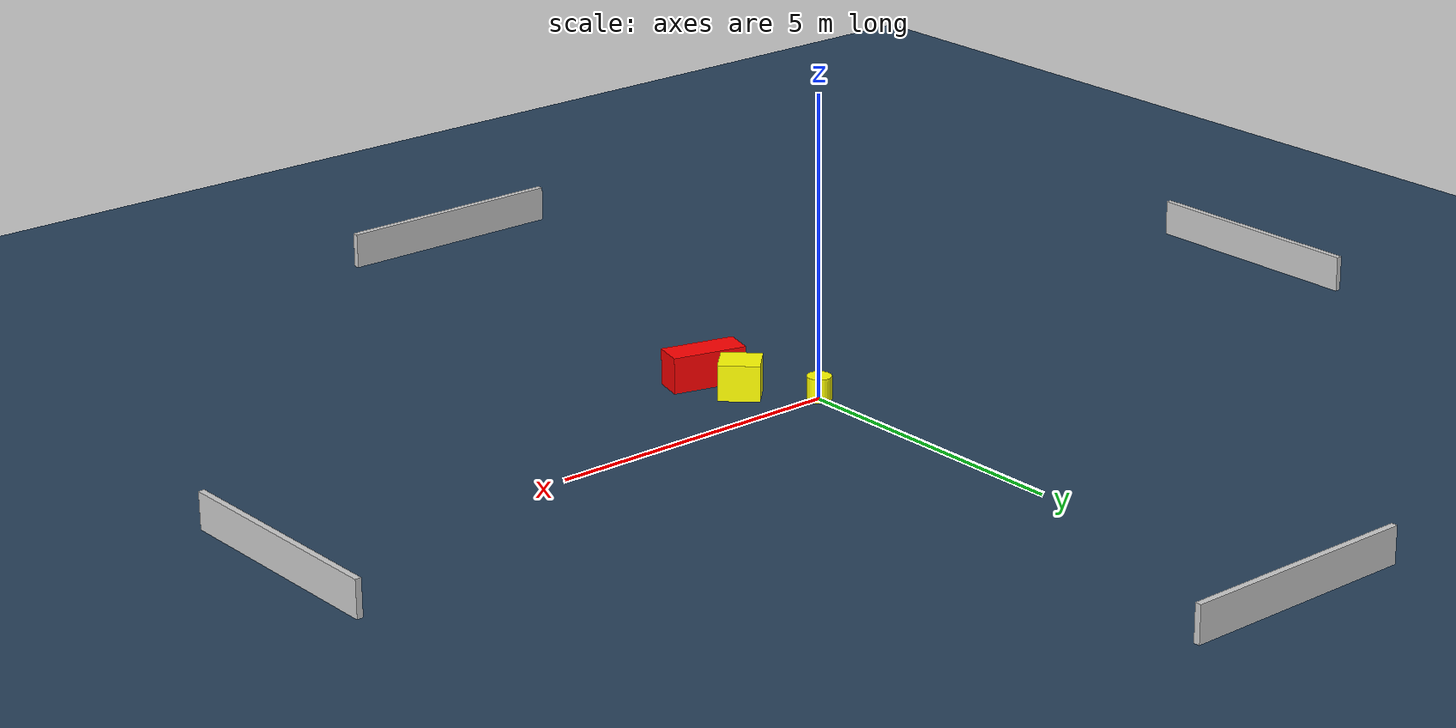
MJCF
<?xml version="1.0" ?>
<mujoco model="generated_environment">
  <option timestep="0.01" integrator="RK4" cone="elliptic"/>
  <default>
    <geom density="1"/>
  </default>
  <asset>
    <texture builtin="gradient" height="3072" name="skybox" rgb1="0.3 0.5 0.7" rgb2="0 0 0" type="skybox" width="512"/>
    <texture builtin="checker" height="300" name="groundplane" rgb1="0.2 0.3 0.4" rgb2="0.1 0.2 0.3" type="2d" width="300"/>
    <material name="groundplane" reflectance="0.2" texrepeat="5 5" texture="groundplane"/>
  </asset>
  <worldbody>
    <light dir="0 0 -1" directional="true" pos="0 0 1.5"/>
    <geom condim="3" friction="0.5 0.005 0.001" material="groundplane" name="floor" pos="0 0 0" size="0 0 0.05" type="plane"/>
    <body name="walls">
      <geom name="wall_1" condim="4" pos="-10.0 0.0 0.3" rgba="0.800000011920929 0.800000011920929 0.800000011920929 1.0" size="0.05 2.0 0.3" type="box"/>
      <geom name="wall_2" condim="4" pos="10.0 0.0 0.3" rgba="0.800000011920929 0.800000011920929 0.800000011920929 1.0" size="0.05 2.0 0.3" type="box"/>
      <geom name="wall_3" condim="4" pos="0.0 -10.0 0.3" rgba="0.800000011920929 0.800000011920929 0.800000011920929 1.0" size="2.0 0.05 0.3" type="box"/>
      <geom name="wall_4" condim="4" pos="0.0 10.0 0.3" rgba="0.800000011920929 0.800000011920929 0.800000011920929 1.0" size="2.0 0.05 0.3" type="box"/>
    </body>
    <body name="robot">
      <joint name="joint_x" type="slide" pos="0 0 0" axis="1 0 0"/>
      <joint name="joint_y" type="slide" pos="0 0 0" axis="0 1 0"/>
      <geom name="robot" type="cylinder" pos="0.0 0.0 0.2" size="0.2 0.2 0.0" mass="5.0" friction="1.0 0.005 0.0001" condim="4" rgba="1.0 1.0 0.0 1.0"/>
    </body>
    <body name="obstacle_1_movable">
      <geom name="obstacle_1_movable" condim="4" pos="0.8151972981959401 -0.9615045198665132 0.3" euler="0 0 225.12978469056645" friction="0.0 0.005 0.001" rgba="1.0 1.0 0.0 1.0" size="0.3008617186402096 0.33682318642234343 0.3" type="box" mass="0.1"/>
      <joint type="free"/>
    </body>
    <body name="obstacle_2_static">
      <geom name="obstacle_2_static" condim="4" pos="0.9215106567017445 -1.745972241779826 0.3" euler="0 0 165.36597076181638" friction="0.0 0.005 0.001" rgba="1.0 0.0 0.0 1.0" size="0.6246951779657297 0.2520054531061649 0.3" type="box"/>
    </body>
  </worldbody>
  <actuator>
    <motor name="actuator_x" joint="joint_x" gear="1" ctrlrange="-1 1"/>
    <motor name="actuator_y" joint="joint_y" gear="1" ctrlrange="-1 1"/>
  </actuator>
</mujoco>
